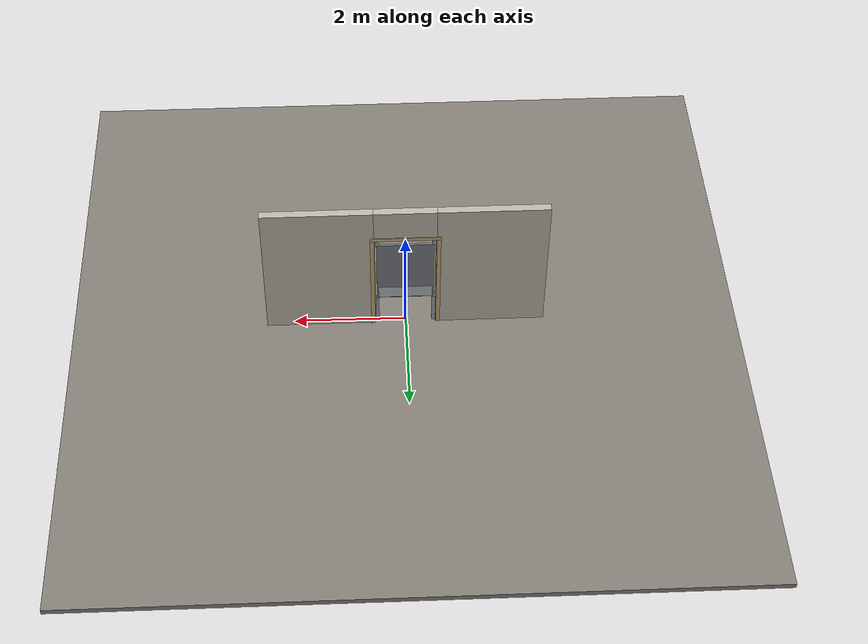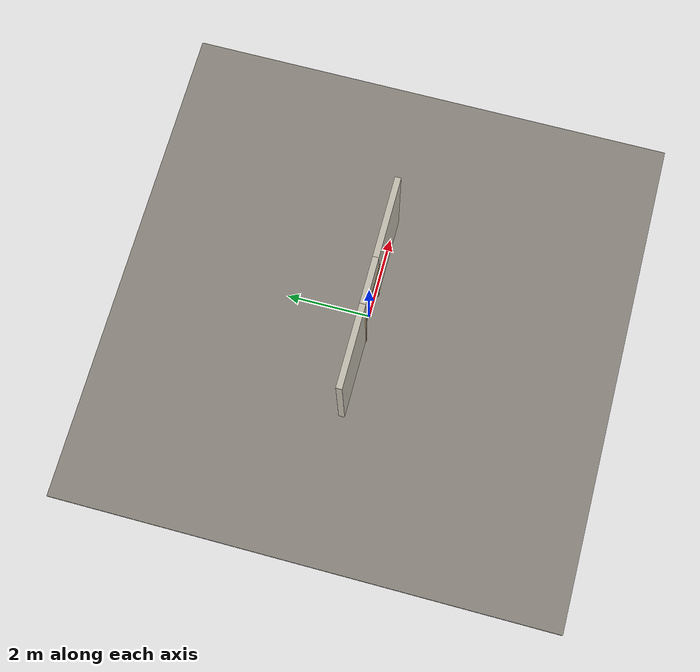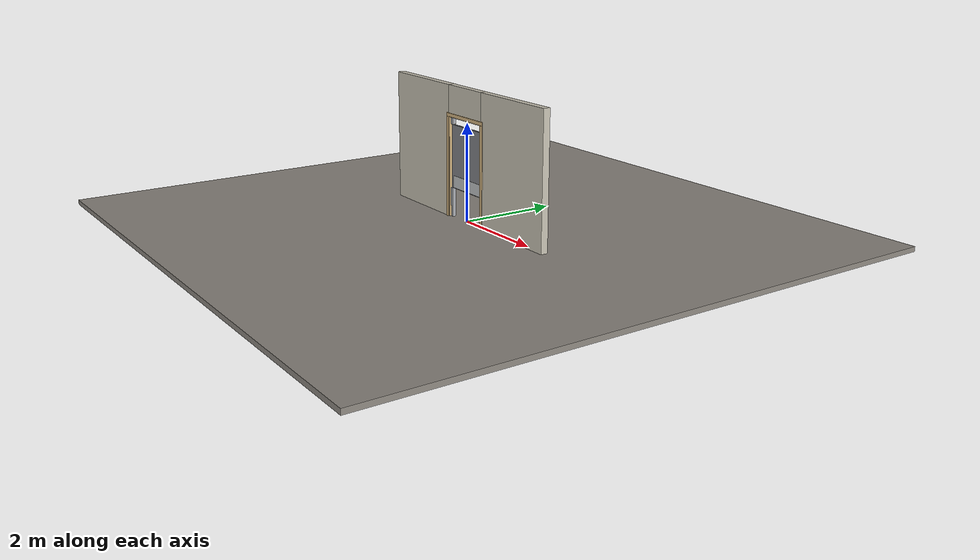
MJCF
<?xml version="1.0" ?>
<mujoco model="db0716_saloon_full">
  <compiler angle="radian" meshdir="../../hardware" texturedir="../../textures" autolimits="true" inertiafromgeom="false"/>
  <option timestep="0.002" integrator="implicitfast" cone="elliptic" impratio="10" noslip_iterations="3">
    <flag multiccd="enable"/>
  </option>
  <size memory="16M"/>
  <default>
    <geom condim="4" solref="0.005 1" solimp="0.95 0.99 0.001"/>
    <joint solreflimit="0.005 1" solimplimit="0.95 0.99 0.001"/>
    <tendon solreflimit="0.005 1"/>
    <equality solref="0.002 1"/>
  </default>
  <visual>
    <headlight ambient="0.4 0.4 0.4" diffuse="0.7 0.7 0.7" specular="0.2 0.2 0.2"/>
    <quality shadowsize="4096"/>
    <map znear="0.01" zfar="60"/>
  </visual>
  <asset>
    <material name="mat_floor" rgba="0.55 0.53 0.5 1" specular="0.2" shininess="0.15" reflectance="0"/>
    <material name="mat_wall" rgba="0.78 0.76 0.7 1" specular="0.2" shininess="0.1" reflectance="0"/>
    <material name="mat_frame" rgba="0.82 0.7 0.5 1" specular="0.2" shininess="0.45" reflectance="0"/>
    <material name="mat_leaf_a" rgba="0.5 0.51 0.53 1" specular="0.2" shininess="0.51" reflectance="0"/>
    <material name="mat_leaf_a_louver" rgba="0.425 0.433 0.451 1" specular="0.2" shininess="0.4" reflectance="0"/>
    <material name="mat_hinge" rgba="0.65 0.66 0.68 1" specular="0.74" shininess="0.5" reflectance="0.36"/>
    <material name="mat_kick" rgba="0.75 0.76 0.77 1" specular="0.8" shininess="0.65" reflectance="0.4"/>
    <material name="mat_leaf_b" rgba="0.5 0.51 0.53 1" specular="0.2" shininess="0.51" reflectance="0"/>
    <material name="mat_leaf_b_louver" rgba="0.425 0.433 0.451 1" specular="0.2" shininess="0.4" reflectance="0"/>
    <texture name="skybox" type="skybox" builtin="gradient" rgb1="0.6 0.7 0.85" rgb2="0.9 0.92 0.95" width="256" height="256"/>
  </asset>
  <worldbody>
    <light name="sun" pos="1.5 -2.5 4" dir="-0.3 0.5 -0.8" directional="true" diffuse="0.8 0.8 0.8" specular="0.3 0.3 0.3" castshadow="true"/>
    <light name="fill" pos="-1.5 2.5 3" dir="0.3 -0.5 -0.7" directional="true" diffuse="0.35 0.35 0.4" castshadow="false"/>
    <camera name="robot_view" pos="0 -2.546875 1.738125" xyaxes="1 0 0 0 0.26963 0.962964" fovy="52"/>
    <camera name="far_view" pos="0 2.546875 1.738125" xyaxes="-1 0 0 0 -0.26963 0.962964" fovy="52"/>
    <camera name="iso" pos="1.935625 -2.139375 2.145625" xyaxes="0.741536 0.670913 0 -0.242917 0.268487 0.932151" fovy="46"/>
    <camera name="detail_handle" pos="0.48 -0.8 1.28" xyaxes="0.97561 0.219512 0 -0.070934 0.315262 0.94635" fovy="38"/>
    <geom name="floor" type="box" size="6 6 0.05" pos="0 0 -0.05" material="mat_floor" group="0" contype="1" conaffinity="1" friction="0.8 0.005 0.0001" density="2400"/>
    <geom name="wall_left" type="box" size="0.9735 0.0725 1.35" pos="-1.5265 0 1.35" material="mat_wall" group="0" contype="1" conaffinity="1" friction="0.6 0.005 0.0001" density="800"/>
    <geom name="wall_right" type="box" size="0.9735 0.0725 1.35" pos="1.5265 0 1.35" material="mat_wall" group="0" contype="1" conaffinity="1" friction="0.6 0.005 0.0001" density="800"/>
    <geom name="wall_header" type="box" size="0.553 0.0725 0.3155" pos="0 0 2.3845" material="mat_wall" group="0" contype="1" conaffinity="1" friction="0.6 0.005 0.0001" density="800"/>
    <geom name="jamb_hinge" type="box" size="0.0095 0.0725 1.025" pos="-0.5435 0 1.025" material="mat_frame" group="0" contype="1" conaffinity="1" friction="0.6 0.005 0.0001" density="400"/>
    <geom name="jamb_strike" type="box" size="0.0095 0.0725 1.025" pos="0.5435 0 1.025" material="mat_frame" group="0" contype="1" conaffinity="1" friction="0.6 0.005 0.0001" density="400"/>
    <geom name="stud_strike" type="box" size="0.015 0.0725 1.025" pos="0.568 0 1.025" material="mat_wall" group="0" contype="1" conaffinity="1" friction="0.6 0.005 0.0001" density="500"/>
    <geom name="jamb_head" type="box" size="0.568 0.0725 0.0095" pos="0.015 0 2.0595" material="mat_frame" group="0" contype="1" conaffinity="1" friction="0.6 0.005 0.0001" density="400"/>
    <geom name="head_stud" type="box" size="0.568 0.0725 0.015" pos="0.015 0 2.084" material="mat_wall" group="0" contype="1" conaffinity="1" friction="0.6 0.005 0.0001" density="500"/>
    <geom name="casing_l_n" type="box" size="0.035 0.008 1.0345" pos="-0.583 -0.0805 1.025" material="mat_frame" group="2" contype="0" conaffinity="0" density="400"/>
    <geom name="casing_r_n" type="box" size="0.035 0.008 1.0345" pos="0.583 -0.0805 1.025" material="mat_frame" group="2" contype="0" conaffinity="0" density="400"/>
    <geom name="casing_h_n" type="box" size="0.618 0.008 0.035" pos="0 -0.0805 2.099" material="mat_frame" group="2" contype="0" conaffinity="0" density="400"/>
    <geom name="casing_l_p" type="box" size="0.035 0.008 1.0345" pos="-0.583 0.0805 1.025" material="mat_frame" group="2" contype="0" conaffinity="0" density="400"/>
    <geom name="casing_r_p" type="box" size="0.035 0.008 1.0345" pos="0.583 0.0805 1.025" material="mat_frame" group="2" contype="0" conaffinity="0" density="400"/>
    <geom name="casing_h_p" type="box" size="0.618 0.008 0.035" pos="0 0.0805 2.099" material="mat_frame" group="2" contype="0" conaffinity="0" density="400"/>
    <geom name="pivot_bottom_socket" type="box" size="0.035 0.035 0.304" pos="-0.506 0 0.294" material="mat_hinge" group="1" contype="0" conaffinity="0" density="7850"/>
    <geom name="pivot_top_bracket" type="box" size="0.035 0.035 0.071" pos="-0.506 0 1.979" material="mat_hinge" group="1" contype="0" conaffinity="0" density="7850"/>
    <geom name="pivot_bottom_socket_2" type="box" size="0.035 0.035 0.304" pos="0.506 0 0.294" material="mat_hinge" group="1" contype="0" conaffinity="0" density="7850"/>
    <geom name="pivot_top_bracket_2" type="box" size="0.035 0.035 0.071" pos="0.506 0 1.979" material="mat_hinge" group="1" contype="0" conaffinity="0" density="7850"/>
    <site name="approach_point" pos="0 -1.5 0" quat="1 0 0 0" size="0.05" rgba="0.2 0.9 0.2 0.5" group="4"/>
    <site name="goal_point" pos="0 1.5 0" quat="1 0 0 0" size="0.05" rgba="0.2 0.9 0.2 0.5" group="4"/>
    <site name="door_plane_center" pos="0 0 1.025" quat="1 0 0 0" size="0.02" rgba="0.2 0.9 0.2 0.5" group="4"/>
    <body name="leaf_a" pos="-0.534 0 0">
      <inertial pos="0.275887 0 1.093514" mass="7.267" quat="0.500595 0.500595 0.499404 -0.499404" diaginertia="0.145485199 1.151226408 1.292796536"/>
      <joint name="leaf_a_hinge" type="hinge" axis="0 0 1" pos="0.028 0 0" limited="true" range="-1.570796 1.570796" damping="0.764674" frictionloss="0.21806" stiffness="6" springref="0" armature="0.02"/>
      <geom name="leaf_a_slab" type="box" size="0.25 0.022 0.65" pos="0.278 0 1.25" material="mat_leaf_a" group="0" contype="1" conaffinity="1" friction="0.35 0.005 0.0001" density="1"/>
      <geom name="leaf_a_louver_0" type="box" size="0.16 0.002 0.027038" pos="0.278 0 0.80575" quat="0.953717 0.300706 0 0" material="mat_leaf_a_louver" group="1" contype="0" conaffinity="0" density="1"/>
      <geom name="leaf_a_louver_1" type="box" size="0.16 0.002 0.027038" pos="0.278 0 0.85725" quat="0.953717 0.300706 0 0" material="mat_leaf_a_louver" group="1" contype="0" conaffinity="0" density="1"/>
      <geom name="leaf_a_louver_2" type="box" size="0.16 0.002 0.027038" pos="0.278 0 0.90875" quat="0.953717 0.300706 0 0" material="mat_leaf_a_louver" group="1" contype="0" conaffinity="0" density="1"/>
      <geom name="leaf_a_louver_3" type="box" size="0.16 0.002 0.027038" pos="0.278 0 0.96025" quat="0.953717 0.300706 0 0" material="mat_leaf_a_louver" group="1" contype="0" conaffinity="0" density="1"/>
      <geom name="leaf_a_louver_4" type="box" size="0.16 0.002 0.027038" pos="0.278 0 1.01175" quat="0.953717 0.300706 0 0" material="mat_leaf_a_louver" group="1" contype="0" conaffinity="0" density="1"/>
      <geom name="leaf_a_louver_5" type="box" size="0.16 0.002 0.027038" pos="0.278 0 1.06325" quat="0.953717 0.300706 0 0" material="mat_leaf_a_louver" group="1" contype="0" conaffinity="0" density="1"/>
      <geom name="leaf_a_louver_6" type="box" size="0.16 0.002 0.027038" pos="0.278 0 1.11475" quat="0.953717 0.300706 0 0" material="mat_leaf_a_louver" group="1" contype="0" conaffinity="0" density="1"/>
      <geom name="leaf_a_louver_7" type="box" size="0.16 0.002 0.027038" pos="0.278 0 1.16625" quat="0.953717 0.300706 0 0" material="mat_leaf_a_louver" group="1" contype="0" conaffinity="0" density="1"/>
      <geom name="leaf_a_louver_8" type="box" size="0.16 0.002 0.027038" pos="0.278 0 1.21775" quat="0.953717 0.300706 0 0" material="mat_leaf_a_louver" group="1" contype="0" conaffinity="0" density="1"/>
      <geom name="leaf_a_louver_9" type="box" size="0.16 0.002 0.027038" pos="0.278 0 1.26925" quat="0.953717 0.300706 0 0" material="mat_leaf_a_louver" group="1" contype="0" conaffinity="0" density="1"/>
      <geom name="leaf_a_louver_10" type="box" size="0.16 0.002 0.027038" pos="0.278 0 1.32075" quat="0.953717 0.300706 0 0" material="mat_leaf_a_louver" group="1" contype="0" conaffinity="0" density="1"/>
      <geom name="leaf_a_louver_11" type="box" size="0.16 0.002 0.027038" pos="0.278 0 1.37225" quat="0.953717 0.300706 0 0" material="mat_leaf_a_louver" group="1" contype="0" conaffinity="0" density="1"/>
      <geom name="leaf_a_louver_12" type="box" size="0.16 0.002 0.027038" pos="0.278 0 1.42375" quat="0.953717 0.300706 0 0" material="mat_leaf_a_louver" group="1" contype="0" conaffinity="0" density="1"/>
      <geom name="leaf_a_louver_13" type="box" size="0.16 0.002 0.027038" pos="0.278 0 1.47525" quat="0.953717 0.300706 0 0" material="mat_leaf_a_louver" group="1" contype="0" conaffinity="0" density="1"/>
      <geom name="leaf_a_louver_14" type="box" size="0.16 0.002 0.027038" pos="0.278 0 1.52675" quat="0.953717 0.300706 0 0" material="mat_leaf_a_louver" group="1" contype="0" conaffinity="0" density="1"/>
      <geom name="leaf_a_louver_15" type="box" size="0.16 0.002 0.027038" pos="0.278 0 1.57825" quat="0.953717 0.300706 0 0" material="mat_leaf_a_louver" group="1" contype="0" conaffinity="0" density="1"/>
      <geom name="leaf_a_louver_16" type="box" size="0.16 0.002 0.027038" pos="0.278 0 1.62975" quat="0.953717 0.300706 0 0" material="mat_leaf_a_louver" group="1" contype="0" conaffinity="0" density="1"/>
      <geom name="leaf_a_louver_17" type="box" size="0.16 0.002 0.027038" pos="0.278 0 1.68125" quat="0.953717 0.300706 0 0" material="mat_leaf_a_louver" group="1" contype="0" conaffinity="0" density="1"/>
      <geom name="leaf_a_louver_18" type="box" size="0.16 0.002 0.027038" pos="0.278 0 1.73275" quat="0.953717 0.300706 0 0" material="mat_leaf_a_louver" group="1" contype="0" conaffinity="0" density="1"/>
      <geom name="leaf_a_louver_19" type="box" size="0.16 0.002 0.027038" pos="0.278 0 1.78425" quat="0.953717 0.300706 0 0" material="mat_leaf_a_louver" group="1" contype="0" conaffinity="0" density="1"/>
      <geom name="pivot_bottom" type="cylinder" size="0.014 0.004" pos="0.028 0 0.595" material="mat_hinge" group="1" contype="0" conaffinity="0" density="7850"/>
      <geom name="pivot_top" type="cylinder" size="0.014 0.004" pos="0.028 0 1.904" material="mat_hinge" group="1" contype="0" conaffinity="0" density="7850"/>
      <geom name="leaf_a_kick_n" type="box" size="0.22 0.0008 0.125" pos="0.278 -0.0228 0.735" material="mat_kick" group="2" contype="0" conaffinity="0" density="7900"/>
      <geom name="leaf_a_kick_p" type="box" size="0.22 0.0008 0.125" pos="0.278 0.0228 0.735" material="mat_kick" group="2" contype="0" conaffinity="0" density="7900"/>
      <site name="leaf_a_push_site" pos="0.403 -0.022 1.38" quat="1 0 0 0" size="0.015" rgba="0.2 0.9 0.2 0.5" group="4"/>
    </body>
    <body name="leaf_b" pos="0.534 0 0">
      <inertial pos="-0.275887 0 1.093514" mass="7.267" quat="0.500595 -0.500595 -0.499404 -0.499404" diaginertia="0.145485199 1.151226408 1.292796536"/>
      <joint name="leaf_b_hinge" type="hinge" axis="0 0 -1" pos="-0.028 0 0" limited="true" range="-1.570796 1.570796" damping="0.764674" frictionloss="0.21806" stiffness="6" springref="0" armature="0.02"/>
      <geom name="leaf_b_slab" type="box" size="0.25 0.022 0.65" pos="-0.278 0 1.25" material="mat_leaf_b" group="0" contype="1" conaffinity="1" friction="0.35 0.005 0.0001" density="1"/>
      <geom name="leaf_b_louver_0" type="box" size="0.16 0.002 0.027038" pos="-0.278 0 0.80575" quat="0.953717 0.300706 0 0" material="mat_leaf_b_louver" group="1" contype="0" conaffinity="0" density="1"/>
      <geom name="leaf_b_louver_1" type="box" size="0.16 0.002 0.027038" pos="-0.278 0 0.85725" quat="0.953717 0.300706 0 0" material="mat_leaf_b_louver" group="1" contype="0" conaffinity="0" density="1"/>
      <geom name="leaf_b_louver_2" type="box" size="0.16 0.002 0.027038" pos="-0.278 0 0.90875" quat="0.953717 0.300706 0 0" material="mat_leaf_b_louver" group="1" contype="0" conaffinity="0" density="1"/>
      <geom name="leaf_b_louver_3" type="box" size="0.16 0.002 0.027038" pos="-0.278 0 0.96025" quat="0.953717 0.300706 0 0" material="mat_leaf_b_louver" group="1" contype="0" conaffinity="0" density="1"/>
      <geom name="leaf_b_louver_4" type="box" size="0.16 0.002 0.027038" pos="-0.278 0 1.01175" quat="0.953717 0.300706 0 0" material="mat_leaf_b_louver" group="1" contype="0" conaffinity="0" density="1"/>
      <geom name="leaf_b_louver_5" type="box" size="0.16 0.002 0.027038" pos="-0.278 0 1.06325" quat="0.953717 0.300706 0 0" material="mat_leaf_b_louver" group="1" contype="0" conaffinity="0" density="1"/>
      <geom name="leaf_b_louver_6" type="box" size="0.16 0.002 0.027038" pos="-0.278 0 1.11475" quat="0.953717 0.300706 0 0" material="mat_leaf_b_louver" group="1" contype="0" conaffinity="0" density="1"/>
      <geom name="leaf_b_louver_7" type="box" size="0.16 0.002 0.027038" pos="-0.278 0 1.16625" quat="0.953717 0.300706 0 0" material="mat_leaf_b_louver" group="1" contype="0" conaffinity="0" density="1"/>
      <geom name="leaf_b_louver_8" type="box" size="0.16 0.002 0.027038" pos="-0.278 0 1.21775" quat="0.953717 0.300706 0 0" material="mat_leaf_b_louver" group="1" contype="0" conaffinity="0" density="1"/>
      <geom name="leaf_b_louver_9" type="box" size="0.16 0.002 0.027038" pos="-0.278 0 1.26925" quat="0.953717 0.300706 0 0" material="mat_leaf_b_louver" group="1" contype="0" conaffinity="0" density="1"/>
      <geom name="leaf_b_louver_10" type="box" size="0.16 0.002 0.027038" pos="-0.278 0 1.32075" quat="0.953717 0.300706 0 0" material="mat_leaf_b_louver" group="1" contype="0" conaffinity="0" density="1"/>
      <geom name="leaf_b_louver_11" type="box" size="0.16 0.002 0.027038" pos="-0.278 0 1.37225" quat="0.953717 0.300706 0 0" material="mat_leaf_b_louver" group="1" contype="0" conaffinity="0" density="1"/>
      <geom name="leaf_b_louver_12" type="box" size="0.16 0.002 0.027038" pos="-0.278 0 1.42375" quat="0.953717 0.300706 0 0" material="mat_leaf_b_louver" group="1" contype="0" conaffinity="0" density="1"/>
      <geom name="leaf_b_louver_13" type="box" size="0.16 0.002 0.027038" pos="-0.278 0 1.47525" quat="0.953717 0.300706 0 0" material="mat_leaf_b_louver" group="1" contype="0" conaffinity="0" density="1"/>
      <geom name="leaf_b_louver_14" type="box" size="0.16 0.002 0.027038" pos="-0.278 0 1.52675" quat="0.953717 0.300706 0 0" material="mat_leaf_b_louver" group="1" contype="0" conaffinity="0" density="1"/>
      <geom name="leaf_b_louver_15" type="box" size="0.16 0.002 0.027038" pos="-0.278 0 1.57825" quat="0.953717 0.300706 0 0" material="mat_leaf_b_louver" group="1" contype="0" conaffinity="0" density="1"/>
      <geom name="leaf_b_louver_16" type="box" size="0.16 0.002 0.027038" pos="-0.278 0 1.62975" quat="0.953717 0.300706 0 0" material="mat_leaf_b_louver" group="1" contype="0" conaffinity="0" density="1"/>
      <geom name="leaf_b_louver_17" type="box" size="0.16 0.002 0.027038" pos="-0.278 0 1.68125" quat="0.953717 0.300706 0 0" material="mat_leaf_b_louver" group="1" contype="0" conaffinity="0" density="1"/>
      <geom name="leaf_b_louver_18" type="box" size="0.16 0.002 0.027038" pos="-0.278 0 1.73275" quat="0.953717 0.300706 0 0" material="mat_leaf_b_louver" group="1" contype="0" conaffinity="0" density="1"/>
      <geom name="leaf_b_louver_19" type="box" size="0.16 0.002 0.027038" pos="-0.278 0 1.78425" quat="0.953717 0.300706 0 0" material="mat_leaf_b_louver" group="1" contype="0" conaffinity="0" density="1"/>
      <geom name="pivot_bottom_2" type="cylinder" size="0.014 0.004" pos="-0.028 0 0.595" material="mat_hinge" group="1" contype="0" conaffinity="0" density="7850"/>
      <geom name="pivot_top_2" type="cylinder" size="0.014 0.004" pos="-0.028 0 1.904" material="mat_hinge" group="1" contype="0" conaffinity="0" density="7850"/>
      <geom name="leaf_b_kick_n" type="box" size="0.22 0.0008 0.125" pos="-0.278 -0.0228 0.735" material="mat_kick" group="2" contype="0" conaffinity="0" density="7900"/>
      <geom name="leaf_b_kick_p" type="box" size="0.22 0.0008 0.125" pos="-0.278 0.0228 0.735" material="mat_kick" group="2" contype="0" conaffinity="0" density="7900"/>
      <site name="leaf_b_push_site" pos="-0.403 -0.022 1.38" quat="1 0 0 0" size="0.015" rgba="0.2 0.9 0.2 0.5" group="4"/>
    </body>
  </worldbody>
  <sensor>
    <jointpos name="leaf_a_hinge_pos" joint="leaf_a_hinge"/>
    <jointvel name="leaf_a_hinge_vel" joint="leaf_a_hinge"/>
    <jointpos name="leaf_b_hinge_pos" joint="leaf_b_hinge"/>
    <jointvel name="leaf_b_hinge_vel" joint="leaf_b_hinge"/>
  </sensor>
</mujoco>
